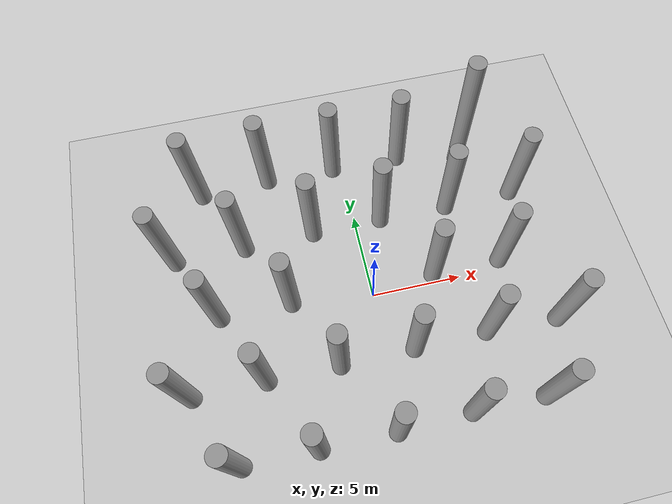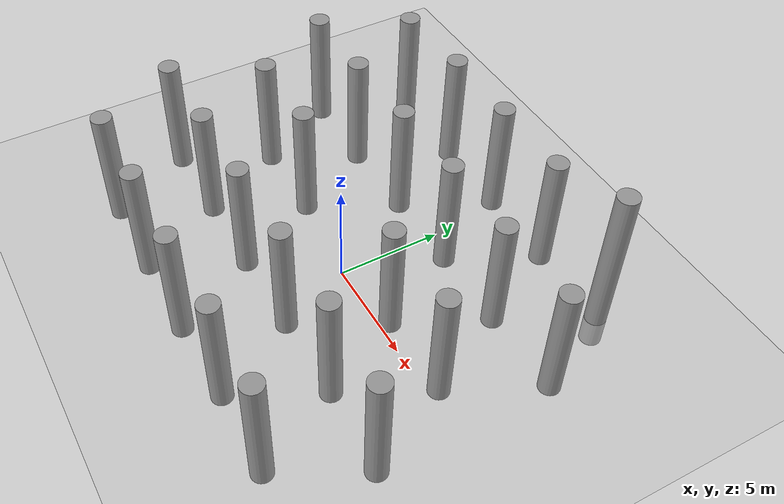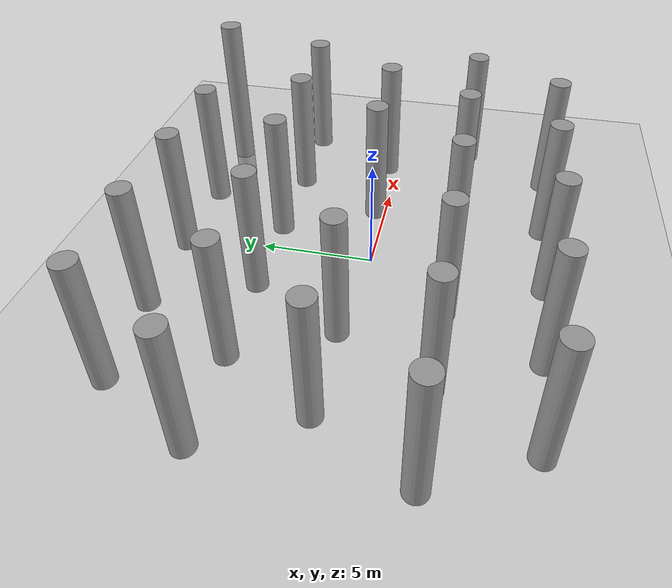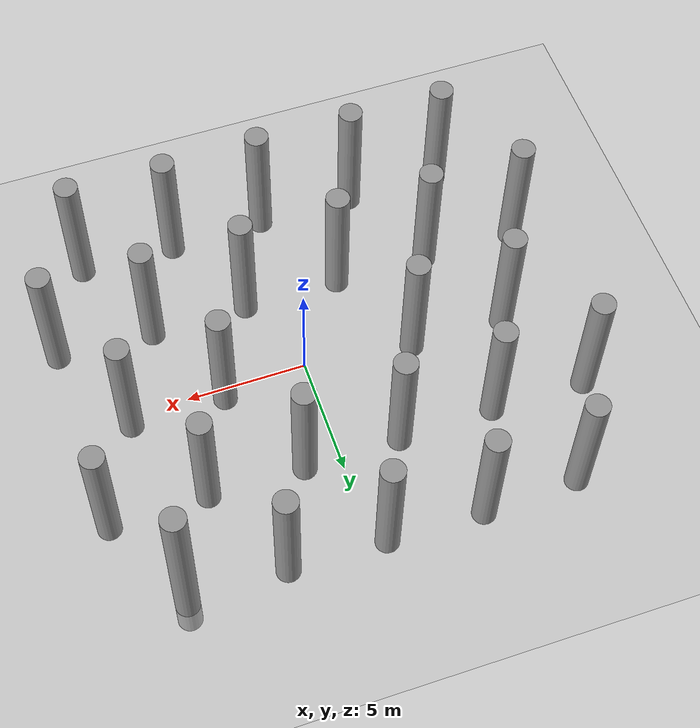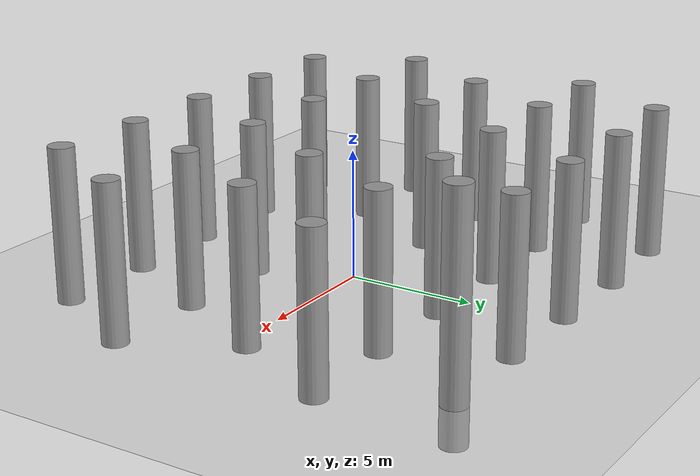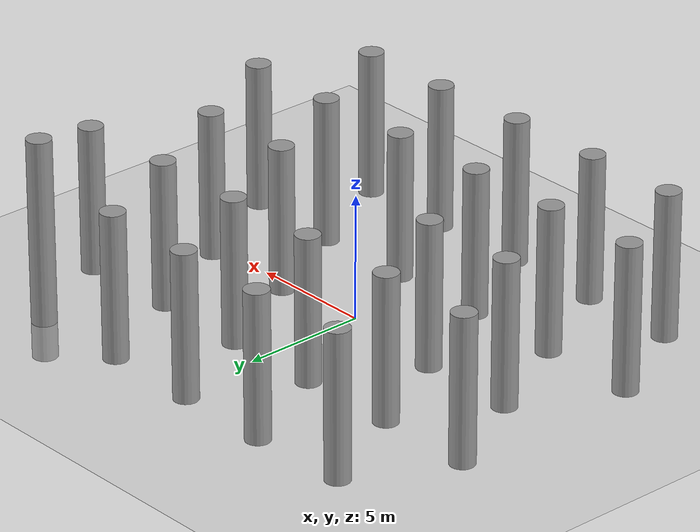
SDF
<sdf version="1.7">
 <world name="default">
  <light name="sun" type="directional">
   <pose>0 0 10 0 -0 0</pose>
   <diffuse>0.8 0.8 0.8 1</diffuse>
   <specular>0.2 0.2 0.2 1</specular>
   <attenuation>
    <range>1000</range>
    <constant>0.9</constant>
    <linear>0.01</linear>
    <quadratic>0.001</quadratic>
   </attenuation>
   <direction>-0.5 0.1 -0.9</direction>
   <spot><inner_angle>0</inner_angle><outer_angle>0</outer_angle><falloff>0</falloff></spot>
  </light>
  <model name="ground_plane">
   <static>1</static>
   <link name="link">
    <collision name="collision">
     <geometry><plane><normal>0 0 1</normal><size>100 100</size></plane></geometry>
     <surface><friction><ode><mu>100</mu><mu2>50</mu2></ode></friction></surface>
    </collision>
    <visual name="visual">
     <cast_shadows>0</cast_shadows>
     <geometry><plane><normal>0 0 1</normal><size>100 100</size></plane></geometry>
     <material>
      <script><uri>file://media/materials/scripts/gazebo.material</uri><name>Gazebo/Grey</name></script>
     </material>
    </visual>
   </link>
  </model>
  <gravity>0 0 -9.8</gravity>
  <magnetic_field>6e-06 2.3e-05 -4.2e-05</magnetic_field>
  <atmosphere type="adiabatic"/>
  <physics type="ode">
   <max_step_size>0.001</max_step_size>
   <real_time_factor>1</real_time_factor>
   <real_time_update_rate>1000</real_time_update_rate>
  </physics>
  <scene><ambient>0.4 0.4 0.4 1</ambient><background>0.7 0.7 0.7 1</background><shadows>1</shadows></scene>
  <spherical_coordinates>
   <surface_model>EARTH_WGS84</surface_model>
   <latitude_deg>0</latitude_deg>
   <longitude_deg>0</longitude_deg>
   <elevation>0</elevation>
   <heading_deg>0</heading_deg>
  </spherical_coordinates>
  <model name="unit_cylinder_clone_15">
   <link name="link">
    <inertial>
     <mass>8.46118</mass>
     <inertia><ixx>55.4464</ixx><ixy>0</ixy><ixz>0</ixz><iyy>55.4464</iyy><iyz>0</iyz><izz>1.0138</izz></inertia>
    </inertial>
    <visual name="visual">
     <geometry><cylinder><radius>0.489525</radius><length>8.8271</length></cylinder></geometry>
     <material>
      <script><name>Gazebo/Grey</name><uri>file://media/materials/scripts/gazebo.material</uri></script>
      <shader type="pixel"/>
     </material>
    </visual>
    <collision name="collision">
     <geometry><cylinder><radius>0.489525</radius><length>8.8271</length></cylinder></geometry>
     <surface>
      <friction>
       <ode><mu>1</mu><mu2>1</mu2><fdir1>0 0 0</fdir1><slip1>0</slip1><slip2>0</slip2></ode>
       <torsional>
        <coefficient>1</coefficient>
        <patch_radius>0</patch_radius>
        <surface_radius>0</surface_radius>
        <use_patch_radius>1</use_patch_radius>
        <ode><slip>0</slip></ode>
       </torsional>
      </friction>
      <bounce><restitution_coefficient>0</restitution_coefficient><threshold>1e+06</threshold></bounce>
      <contact>
       <collide_without_contact>0</collide_without_contact>
       <collide_without_contact_bitmask>1</collide_without_contact_bitmask>
       <collide_bitmask>1</collide_bitmask>
       <ode>
        <soft_cfm>0</soft_cfm>
        <soft_erp>0.2</soft_erp>
        <kp>1e+13</kp>
        <kd>1</kd>
        <max_vel>0.01</max_vel>
        <min_depth>0</min_depth>
       </ode>
       <bullet>
        <split_impulse>1</split_impulse>
        <split_impulse_penetration_threshold>-0.01</split_impulse_penetration_threshold>
        <soft_cfm>0</soft_cfm>
        <soft_erp>0.2</soft_erp>
        <kp>1e+13</kp>
        <kd>1</kd>
       </bullet>
      </contact>
     </surface>
    </collision>
   </link>
   <static>0</static>
   <pose>7.49116 8.57278 2.9612 0 -0 -8e-06</pose>
  </model>
  <model name="unit_cylinder_clone_15_clone">
   <link name="link">
    <inertial>
     <mass>8.46118</mass>
     <inertia><ixx>55.4464</ixx><ixy>0</ixy><ixz>0</ixz><iyy>55.4464</iyy><iyz>0</iyz><izz>1.0138</izz></inertia>
    </inertial>
    <visual name="visual">
     <geometry><cylinder><radius>0.489525</radius><length>5.92241</length></cylinder></geometry>
     <material>
      <script><name>Gazebo/Grey</name><uri>file://media/materials/scripts/gazebo.material</uri></script>
      <shader type="pixel"/>
     </material>
    </visual>
    <collision name="collision">
     <geometry><cylinder><radius>0.489525</radius><length>5.92241</length></cylinder></geometry>
     <surface>
      <friction>
       <ode><mu>1</mu><mu2>1</mu2><fdir1>0 0 0</fdir1><slip1>0</slip1><slip2>0</slip2></ode>
       <torsional>
        <coefficient>1</coefficient>
        <patch_radius>0</patch_radius>
        <surface_radius>0</surface_radius>
        <use_patch_radius>1</use_patch_radius>
        <ode><slip>0</slip></ode>
       </torsional>
      </friction>
      <bounce><restitution_coefficient>0</restitution_coefficient><threshold>1e+06</threshold></bounce>
      <contact>
       <collide_without_contact>0</collide_without_contact>
       <collide_without_contact_bitmask>1</collide_without_contact_bitmask>
       <collide_bitmask>1</collide_bitmask>
       <ode>
        <soft_cfm>0</soft_cfm>
        <soft_erp>0.2</soft_erp>
        <kp>1e+13</kp>
        <kd>1</kd>
        <max_vel>0.01</max_vel>
        <min_depth>0</min_depth>
       </ode>
       <bullet>
        <split_impulse>1</split_impulse>
        <split_impulse_penetration_threshold>-0.01</split_impulse_penetration_threshold>
        <soft_cfm>0</soft_cfm>
        <soft_erp>0.2</soft_erp>
        <kp>1e+13</kp>
        <kd>1</kd>
       </bullet>
      </contact>
     </surface>
    </collision>
   </link>
   <static>0</static>
   <pose>3.47074 8.48349 2.9612 0 0 -8e-06</pose>
  </model>
  <model name="unit_cylinder_clone_15_clone_0">
   <link name="link">
    <inertial>
     <mass>8.46118</mass>
     <inertia><ixx>55.4464</ixx><ixy>0</ixy><ixz>0</ixz><iyy>55.4464</iyy><iyz>0</iyz><izz>1.0138</izz></inertia>
    </inertial>
    <visual name="visual">
     <geometry><cylinder><radius>0.489525</radius><length>5.92241</length></cylinder></geometry>
     <material>
      <script><name>Gazebo/Grey</name><uri>file://media/materials/scripts/gazebo.material</uri></script>
      <shader type="pixel"/>
     </material>
    </visual>
    <collision name="collision">
     <geometry><cylinder><radius>0.489525</radius><length>5.92241</length></cylinder></geometry>
     <surface>
      <friction>
       <ode><mu>1</mu><mu2>1</mu2><fdir1>0 0 0</fdir1><slip1>0</slip1><slip2>0</slip2></ode>
       <torsional>
        <coefficient>1</coefficient>
        <patch_radius>0</patch_radius>
        <surface_radius>0</surface_radius>
        <use_patch_radius>1</use_patch_radius>
        <ode><slip>0</slip></ode>
       </torsional>
      </friction>
      <bounce><restitution_coefficient>0</restitution_coefficient><threshold>1e+06</threshold></bounce>
      <contact>
       <collide_without_contact>0</collide_without_contact>
       <collide_without_contact_bitmask>1</collide_without_contact_bitmask>
       <collide_bitmask>1</collide_bitmask>
       <ode>
        <soft_cfm>0</soft_cfm>
        <soft_erp>0.2</soft_erp>
        <kp>1e+13</kp>
        <kd>1</kd>
        <max_vel>0.01</max_vel>
        <min_depth>0</min_depth>
       </ode>
       <bullet>
        <split_impulse>1</split_impulse>
        <split_impulse_penetration_threshold>-0.01</split_impulse_penetration_threshold>
        <soft_cfm>0</soft_cfm>
        <soft_erp>0.2</soft_erp>
        <kp>1e+13</kp>
        <kd>1</kd>
       </bullet>
      </contact>
     </surface>
    </collision>
   </link>
   <static>0</static>
   <pose>-0.522257 8.53609 2.9612 0 0 -8e-06</pose>
  </model>
  <model name="unit_cylinder_clone_15_clone_1">
   <link name="link">
    <inertial>
     <mass>8.46118</mass>
     <inertia><ixx>55.4464</ixx><ixy>0</ixy><ixz>0</ixz><iyy>55.4464</iyy><iyz>0</iyz><izz>1.0138</izz></inertia>
    </inertial>
    <visual name="visual">
     <geometry><cylinder><radius>0.489525</radius><length>5.92241</length></cylinder></geometry>
     <material>
      <script><name>Gazebo/Grey</name><uri>file://media/materials/scripts/gazebo.material</uri></script>
      <shader type="pixel"/>
     </material>
    </visual>
    <collision name="collision">
     <geometry><cylinder><radius>0.489525</radius><length>5.92241</length></cylinder></geometry>
     <surface>
      <friction>
       <ode><mu>1</mu><mu2>1</mu2><fdir1>0 0 0</fdir1><slip1>0</slip1><slip2>0</slip2></ode>
       <torsional>
        <coefficient>1</coefficient>
        <patch_radius>0</patch_radius>
        <surface_radius>0</surface_radius>
        <use_patch_radius>1</use_patch_radius>
        <ode><slip>0</slip></ode>
       </torsional>
      </friction>
      <bounce><restitution_coefficient>0</restitution_coefficient><threshold>1e+06</threshold></bounce>
      <contact>
       <collide_without_contact>0</collide_without_contact>
       <collide_without_contact_bitmask>1</collide_without_contact_bitmask>
       <collide_bitmask>1</collide_bitmask>
       <ode>
        <soft_cfm>0</soft_cfm>
        <soft_erp>0.2</soft_erp>
        <kp>1e+13</kp>
        <kd>1</kd>
        <max_vel>0.01</max_vel>
        <min_depth>0</min_depth>
       </ode>
       <bullet>
        <split_impulse>1</split_impulse>
        <split_impulse_penetration_threshold>-0.01</split_impulse_penetration_threshold>
        <soft_cfm>0</soft_cfm>
        <soft_erp>0.2</soft_erp>
        <kp>1e+13</kp>
        <kd>1</kd>
       </bullet>
      </contact>
     </surface>
    </collision>
   </link>
   <static>0</static>
   <pose>-4.50106 8.60056 2.9612 0 0 -8e-06</pose>
  </model>
  <model name="unit_cylinder_clone_15_clone_2">
   <link name="link">
    <inertial>
     <mass>8.46118</mass>
     <inertia><ixx>55.4464</ixx><ixy>0</ixy><ixz>0</ixz><iyy>55.4464</iyy><iyz>0</iyz><izz>1.0138</izz></inertia>
    </inertial>
    <visual name="visual">
     <geometry><cylinder><radius>0.489525</radius><length>5.92241</length></cylinder></geometry>
     <material>
      <script><name>Gazebo/Grey</name><uri>file://media/materials/scripts/gazebo.material</uri></script>
      <shader type="pixel"/>
     </material>
    </visual>
    <collision name="collision">
     <geometry><cylinder><radius>0.489525</radius><length>5.92241</length></cylinder></geometry>
     <surface>
      <friction>
       <ode><mu>1</mu><mu2>1</mu2><fdir1>0 0 0</fdir1><slip1>0</slip1><slip2>0</slip2></ode>
       <torsional>
        <coefficient>1</coefficient>
        <patch_radius>0</patch_radius>
        <surface_radius>0</surface_radius>
        <use_patch_radius>1</use_patch_radius>
        <ode><slip>0</slip></ode>
       </torsional>
      </friction>
      <bounce><restitution_coefficient>0</restitution_coefficient><threshold>1e+06</threshold></bounce>
      <contact>
       <collide_without_contact>0</collide_without_contact>
       <collide_without_contact_bitmask>1</collide_without_contact_bitmask>
       <collide_bitmask>1</collide_bitmask>
       <ode>
        <soft_cfm>0</soft_cfm>
        <soft_erp>0.2</soft_erp>
        <kp>1e+13</kp>
        <kd>1</kd>
        <max_vel>0.01</max_vel>
        <min_depth>0</min_depth>
       </ode>
       <bullet>
        <split_impulse>1</split_impulse>
        <split_impulse_penetration_threshold>-0.01</split_impulse_penetration_threshold>
        <soft_cfm>0</soft_cfm>
        <soft_erp>0.2</soft_erp>
        <kp>1e+13</kp>
        <kd>1</kd>
       </bullet>
      </contact>
     </surface>
    </collision>
   </link>
   <static>0</static>
   <pose>-8.49669 8.41734 2.9612 0 0 -8e-06</pose>
  </model>
  <model name="unit_cylinder_clone_15_clone_3">
   <link name="link">
    <inertial>
     <mass>8.46118</mass>
     <inertia><ixx>55.4464</ixx><ixy>0</ixy><ixz>0</ixz><iyy>55.4464</iyy><iyz>0</iyz><izz>1.0138</izz></inertia>
    </inertial>
    <visual name="visual">
     <geometry><cylinder><radius>0.489525</radius><length>5.92241</length></cylinder></geometry>
     <material>
      <script><name>Gazebo/Grey</name><uri>file://media/materials/scripts/gazebo.material</uri></script>
      <shader type="pixel"/>
     </material>
    </visual>
    <collision name="collision">
     <geometry><cylinder><radius>0.489525</radius><length>5.92241</length></cylinder></geometry>
     <surface>
      <friction>
       <ode><mu>1</mu><mu2>1</mu2><fdir1>0 0 0</fdir1><slip1>0</slip1><slip2>0</slip2></ode>
       <torsional>
        <coefficient>1</coefficient>
        <patch_radius>0</patch_radius>
        <surface_radius>0</surface_radius>
        <use_patch_radius>1</use_patch_radius>
        <ode><slip>0</slip></ode>
       </torsional>
      </friction>
      <bounce><restitution_coefficient>0</restitution_coefficient><threshold>1e+06</threshold></bounce>
      <contact>
       <collide_without_contact>0</collide_without_contact>
       <collide_without_contact_bitmask>1</collide_without_contact_bitmask>
       <collide_bitmask>1</collide_bitmask>
       <ode>
        <soft_cfm>0</soft_cfm>
        <soft_erp>0.2</soft_erp>
        <kp>1e+13</kp>
        <kd>1</kd>
        <max_vel>0.01</max_vel>
        <min_depth>0</min_depth>
       </ode>
       <bullet>
        <split_impulse>1</split_impulse>
        <split_impulse_penetration_threshold>-0.01</split_impulse_penetration_threshold>
        <soft_cfm>0</soft_cfm>
        <soft_erp>0.2</soft_erp>
        <kp>1e+13</kp>
        <kd>1</kd>
       </bullet>
      </contact>
     </surface>
    </collision>
   </link>
   <static>0</static>
   <pose>-6.52454 4.40533 2.9612 0 0 -8e-06</pose>
  </model>
  <model name="unit_cylinder_clone_15_clone_4">
   <link name="link">
    <inertial>
     <mass>8.46118</mass>
     <inertia><ixx>55.4464</ixx><ixy>0</ixy><ixz>0</ixz><iyy>55.4464</iyy><iyz>0</iyz><izz>1.0138</izz></inertia>
    </inertial>
    <visual name="visual">
     <geometry><cylinder><radius>0.489525</radius><length>5.92241</length></cylinder></geometry>
     <material>
      <script><name>Gazebo/Grey</name><uri>file://media/materials/scripts/gazebo.material</uri></script>
      <shader type="pixel"/>
     </material>
    </visual>
    <collision name="collision">
     <geometry><cylinder><radius>0.489525</radius><length>5.92241</length></cylinder></geometry>
     <surface>
      <friction>
       <ode><mu>1</mu><mu2>1</mu2><fdir1>0 0 0</fdir1><slip1>0</slip1><slip2>0</slip2></ode>
       <torsional>
        <coefficient>1</coefficient>
        <patch_radius>0</patch_radius>
        <surface_radius>0</surface_radius>
        <use_patch_radius>1</use_patch_radius>
        <ode><slip>0</slip></ode>
       </torsional>
      </friction>
      <bounce><restitution_coefficient>0</restitution_coefficient><threshold>1e+06</threshold></bounce>
      <contact>
       <collide_without_contact>0</collide_without_contact>
       <collide_without_contact_bitmask>1</collide_without_contact_bitmask>
       <collide_bitmask>1</collide_bitmask>
       <ode>
        <soft_cfm>0</soft_cfm>
        <soft_erp>0.2</soft_erp>
        <kp>1e+13</kp>
        <kd>1</kd>
        <max_vel>0.01</max_vel>
        <min_depth>0</min_depth>
       </ode>
       <bullet>
        <split_impulse>1</split_impulse>
        <split_impulse_penetration_threshold>-0.01</split_impulse_penetration_threshold>
        <soft_cfm>0</soft_cfm>
        <soft_erp>0.2</soft_erp>
        <kp>1e+13</kp>
        <kd>1</kd>
       </bullet>
      </contact>
     </surface>
    </collision>
   </link>
   <static>0</static>
   <pose>-2.50167 4.50172 2.9612 0 0 -8e-06</pose>
  </model>
  <model name="unit_cylinder_clone_15_clone_5">
   <link name="link">
    <inertial>
     <mass>8.46118</mass>
     <inertia><ixx>55.4464</ixx><ixy>0</ixy><ixz>0</ixz><iyy>55.4464</iyy><iyz>0</iyz><izz>1.0138</izz></inertia>
    </inertial>
    <visual name="visual">
     <geometry><cylinder><radius>0.489525</radius><length>5.92241</length></cylinder></geometry>
     <material>
      <script><name>Gazebo/Grey</name><uri>file://media/materials/scripts/gazebo.material</uri></script>
      <shader type="pixel"/>
     </material>
    </visual>
    <collision name="collision">
     <geometry><cylinder><radius>0.489525</radius><length>5.92241</length></cylinder></geometry>
     <surface>
      <friction>
       <ode><mu>1</mu><mu2>1</mu2><fdir1>0 0 0</fdir1><slip1>0</slip1><slip2>0</slip2></ode>
       <torsional>
        <coefficient>1</coefficient>
        <patch_radius>0</patch_radius>
        <surface_radius>0</surface_radius>
        <use_patch_radius>1</use_patch_radius>
        <ode><slip>0</slip></ode>
       </torsional>
      </friction>
      <bounce><restitution_coefficient>0</restitution_coefficient><threshold>1e+06</threshold></bounce>
      <contact>
       <collide_without_contact>0</collide_without_contact>
       <collide_without_contact_bitmask>1</collide_without_contact_bitmask>
       <collide_bitmask>1</collide_bitmask>
       <ode>
        <soft_cfm>0</soft_cfm>
        <soft_erp>0.2</soft_erp>
        <kp>1e+13</kp>
        <kd>1</kd>
        <max_vel>0.01</max_vel>
        <min_depth>0</min_depth>
       </ode>
       <bullet>
        <split_impulse>1</split_impulse>
        <split_impulse_penetration_threshold>-0.01</split_impulse_penetration_threshold>
        <soft_cfm>0</soft_cfm>
        <soft_erp>0.2</soft_erp>
        <kp>1e+13</kp>
        <kd>1</kd>
       </bullet>
      </contact>
     </surface>
    </collision>
   </link>
   <static>0</static>
   <pose>1.49307 4.52681 2.9612 0 0 -8e-06</pose>
  </model>
  <model name="unit_cylinder_clone_15_clone_6">
   <link name="link">
    <inertial>
     <mass>8.46118</mass>
     <inertia><ixx>55.4464</ixx><ixy>0</ixy><ixz>0</ixz><iyy>55.4464</iyy><iyz>0</iyz><izz>1.0138</izz></inertia>
    </inertial>
    <visual name="visual">
     <geometry><cylinder><radius>0.489525</radius><length>5.92241</length></cylinder></geometry>
     <material>
      <script><name>Gazebo/Grey</name><uri>file://media/materials/scripts/gazebo.material</uri></script>
      <shader type="pixel"/>
     </material>
    </visual>
    <collision name="collision">
     <geometry><cylinder><radius>0.489525</radius><length>5.92241</length></cylinder></geometry>
     <surface>
      <friction>
       <ode><mu>1</mu><mu2>1</mu2><fdir1>0 0 0</fdir1><slip1>0</slip1><slip2>0</slip2></ode>
       <torsional>
        <coefficient>1</coefficient>
        <patch_radius>0</patch_radius>
        <surface_radius>0</surface_radius>
        <use_patch_radius>1</use_patch_radius>
        <ode><slip>0</slip></ode>
       </torsional>
      </friction>
      <bounce><restitution_coefficient>0</restitution_coefficient><threshold>1e+06</threshold></bounce>
      <contact>
       <collide_without_contact>0</collide_without_contact>
       <collide_without_contact_bitmask>1</collide_without_contact_bitmask>
       <collide_bitmask>1</collide_bitmask>
       <ode>
        <soft_cfm>0</soft_cfm>
        <soft_erp>0.2</soft_erp>
        <kp>1e+13</kp>
        <kd>1</kd>
        <max_vel>0.01</max_vel>
        <min_depth>0</min_depth>
       </ode>
       <bullet>
        <split_impulse>1</split_impulse>
        <split_impulse_penetration_threshold>-0.01</split_impulse_penetration_threshold>
        <soft_cfm>0</soft_cfm>
        <soft_erp>0.2</soft_erp>
        <kp>1e+13</kp>
        <kd>1</kd>
       </bullet>
      </contact>
     </surface>
    </collision>
   </link>
   <static>0</static>
   <pose>5.46462 4.49288 2.9612 0 0 -8e-06</pose>
  </model>
  <model name="unit_cylinder_clone_15_clone_7">
   <link name="link">
    <inertial>
     <mass>8.46118</mass>
     <inertia><ixx>55.4464</ixx><ixy>0</ixy><ixz>0</ixz><iyy>55.4464</iyy><iyz>0</iyz><izz>1.0138</izz></inertia>
    </inertial>
    <visual name="visual">
     <geometry><cylinder><radius>0.489525</radius><length>5.92241</length></cylinder></geometry>
     <material>
      <script><name>Gazebo/Grey</name><uri>file://media/materials/scripts/gazebo.material</uri></script>
      <shader type="pixel"/>
     </material>
    </visual>
    <collision name="collision">
     <geometry><cylinder><radius>0.489525</radius><length>5.92241</length></cylinder></geometry>
     <surface>
      <friction>
       <ode><mu>1</mu><mu2>1</mu2><fdir1>0 0 0</fdir1><slip1>0</slip1><slip2>0</slip2></ode>
       <torsional>
        <coefficient>1</coefficient>
        <patch_radius>0</patch_radius>
        <surface_radius>0</surface_radius>
        <use_patch_radius>1</use_patch_radius>
        <ode><slip>0</slip></ode>
       </torsional>
      </friction>
      <bounce><restitution_coefficient>0</restitution_coefficient><threshold>1e+06</threshold></bounce>
      <contact>
       <collide_without_contact>0</collide_without_contact>
       <collide_without_contact_bitmask>1</collide_without_contact_bitmask>
       <collide_bitmask>1</collide_bitmask>
       <ode>
        <soft_cfm>0</soft_cfm>
        <soft_erp>0.2</soft_erp>
        <kp>1e+13</kp>
        <kd>1</kd>
        <max_vel>0.01</max_vel>
        <min_depth>0</min_depth>
       </ode>
       <bullet>
        <split_impulse>1</split_impulse>
        <split_impulse_penetration_threshold>-0.01</split_impulse_penetration_threshold>
        <soft_cfm>0</soft_cfm>
        <soft_erp>0.2</soft_erp>
        <kp>1e+13</kp>
        <kd>1</kd>
       </bullet>
      </contact>
     </surface>
    </collision>
   </link>
   <static>0</static>
   <pose>-10.5086 4.42625 2.9612 0 0 -8e-06</pose>
  </model>
  <model name="unit_cylinder_clone_15_clone_8">
   <link name="link">
    <inertial>
     <mass>8.46118</mass>
     <inertia><ixx>55.4464</ixx><ixy>0</ixy><ixz>0</ixz><iyy>55.4464</iyy><iyz>0</iyz><izz>1.0138</izz></inertia>
    </inertial>
    <visual name="visual">
     <geometry><cylinder><radius>0.489525</radius><length>5.92241</length></cylinder></geometry>
     <material>
      <script><name>Gazebo/Grey</name><uri>file://media/materials/scripts/gazebo.material</uri></script>
      <shader type="pixel"/>
     </material>
    </visual>
    <collision name="collision">
     <geometry><cylinder><radius>0.489525</radius><length>5.92241</length></cylinder></geometry>
     <surface>
      <friction>
       <ode><mu>1</mu><mu2>1</mu2><fdir1>0 0 0</fdir1><slip1>0</slip1><slip2>0</slip2></ode>
       <torsional>
        <coefficient>1</coefficient>
        <patch_radius>0</patch_radius>
        <surface_radius>0</surface_radius>
        <use_patch_radius>1</use_patch_radius>
        <ode><slip>0</slip></ode>
       </torsional>
      </friction>
      <bounce><restitution_coefficient>0</restitution_coefficient><threshold>1e+06</threshold></bounce>
      <contact>
       <collide_without_contact>0</collide_without_contact>
       <collide_without_contact_bitmask>1</collide_without_contact_bitmask>
       <collide_bitmask>1</collide_bitmask>
       <ode>
        <soft_cfm>0</soft_cfm>
        <soft_erp>0.2</soft_erp>
        <kp>1e+13</kp>
        <kd>1</kd>
        <max_vel>0.01</max_vel>
        <min_depth>0</min_depth>
       </ode>
       <bullet>
        <split_impulse>1</split_impulse>
        <split_impulse_penetration_threshold>-0.01</split_impulse_penetration_threshold>
        <soft_cfm>0</soft_cfm>
        <soft_erp>0.2</soft_erp>
        <kp>1e+13</kp>
        <kd>1</kd>
       </bullet>
      </contact>
     </surface>
    </collision>
   </link>
   <static>0</static>
   <pose>9.48648 4.60149 2.9612 0 0 -8e-06</pose>
  </model>
  <model name="unit_cylinder_clone_15_clone_9">
   <link name="link">
    <inertial>
     <mass>8.46118</mass>
     <inertia><ixx>55.4464</ixx><ixy>0</ixy><ixz>0</ixz><iyy>55.4464</iyy><iyz>0</iyz><izz>1.0138</izz></inertia>
    </inertial>
    <visual name="visual">
     <geometry><cylinder><radius>0.489525</radius><length>5.92241</length></cylinder></geometry>
     <material>
      <script><name>Gazebo/Grey</name><uri>file://media/materials/scripts/gazebo.material</uri></script>
      <shader type="pixel"/>
     </material>
    </visual>
    <collision name="collision">
     <geometry><cylinder><radius>0.489525</radius><length>5.92241</length></cylinder></geometry>
     <surface>
      <friction>
       <ode><mu>1</mu><mu2>1</mu2><fdir1>0 0 0</fdir1><slip1>0</slip1><slip2>0</slip2></ode>
       <torsional>
        <coefficient>1</coefficient>
        <patch_radius>0</patch_radius>
        <surface_radius>0</surface_radius>
        <use_patch_radius>1</use_patch_radius>
        <ode><slip>0</slip></ode>
       </torsional>
      </friction>
      <bounce><restitution_coefficient>0</restitution_coefficient><threshold>1e+06</threshold></bounce>
      <contact>
       <collide_without_contact>0</collide_without_contact>
       <collide_without_contact_bitmask>1</collide_without_contact_bitmask>
       <collide_bitmask>1</collide_bitmask>
       <ode>
        <soft_cfm>0</soft_cfm>
        <soft_erp>0.2</soft_erp>
        <kp>1e+13</kp>
        <kd>1</kd>
        <max_vel>0.01</max_vel>
        <min_depth>0</min_depth>
       </ode>
       <bullet>
        <split_impulse>1</split_impulse>
        <split_impulse_penetration_threshold>-0.01</split_impulse_penetration_threshold>
        <soft_cfm>0</soft_cfm>
        <soft_erp>0.2</soft_erp>
        <kp>1e+13</kp>
        <kd>1</kd>
       </bullet>
      </contact>
     </surface>
    </collision>
   </link>
   <static>0</static>
   <pose>7.49309 0.491689 2.9612 0 0 -8e-06</pose>
  </model>
  <model name="unit_cylinder_clone_15_clone_10">
   <link name="link">
    <inertial>
     <mass>8.46118</mass>
     <inertia><ixx>55.4464</ixx><ixy>0</ixy><ixz>0</ixz><iyy>55.4464</iyy><iyz>0</iyz><izz>1.0138</izz></inertia>
    </inertial>
    <visual name="visual">
     <geometry><cylinder><radius>0.489525</radius><length>5.92241</length></cylinder></geometry>
     <material>
      <script><name>Gazebo/Grey</name><uri>file://media/materials/scripts/gazebo.material</uri></script>
      <shader type="pixel"/>
     </material>
    </visual>
    <collision name="collision">
     <geometry><cylinder><radius>0.489525</radius><length>5.92241</length></cylinder></geometry>
     <surface>
      <friction>
       <ode><mu>1</mu><mu2>1</mu2><fdir1>0 0 0</fdir1><slip1>0</slip1><slip2>0</slip2></ode>
       <torsional>
        <coefficient>1</coefficient>
        <patch_radius>0</patch_radius>
        <surface_radius>0</surface_radius>
        <use_patch_radius>1</use_patch_radius>
        <ode><slip>0</slip></ode>
       </torsional>
      </friction>
      <bounce><restitution_coefficient>0</restitution_coefficient><threshold>1e+06</threshold></bounce>
      <contact>
       <collide_without_contact>0</collide_without_contact>
       <collide_without_contact_bitmask>1</collide_without_contact_bitmask>
       <collide_bitmask>1</collide_bitmask>
       <ode>
        <soft_cfm>0</soft_cfm>
        <soft_erp>0.2</soft_erp>
        <kp>1e+13</kp>
        <kd>1</kd>
        <max_vel>0.01</max_vel>
        <min_depth>0</min_depth>
       </ode>
       <bullet>
        <split_impulse>1</split_impulse>
        <split_impulse_penetration_threshold>-0.01</split_impulse_penetration_threshold>
        <soft_cfm>0</soft_cfm>
        <soft_erp>0.2</soft_erp>
        <kp>1e+13</kp>
        <kd>1</kd>
       </bullet>
      </contact>
     </surface>
    </collision>
   </link>
   <static>0</static>
   <pose>3.55592 0.467046 2.9612 0 0 -8e-06</pose>
  </model>
  <model name="unit_cylinder_clone_15_clone_12">
   <link name="link">
    <inertial>
     <mass>8.46118</mass>
     <inertia><ixx>55.4464</ixx><ixy>0</ixy><ixz>0</ixz><iyy>55.4464</iyy><iyz>0</iyz><izz>1.0138</izz></inertia>
    </inertial>
    <visual name="visual">
     <geometry><cylinder><radius>0.489525</radius><length>5.92241</length></cylinder></geometry>
     <material>
      <script><name>Gazebo/Grey</name><uri>file://media/materials/scripts/gazebo.material</uri></script>
      <shader type="pixel"/>
     </material>
    </visual>
    <collision name="collision">
     <geometry><cylinder><radius>0.489525</radius><length>5.92241</length></cylinder></geometry>
     <surface>
      <friction>
       <ode><mu>1</mu><mu2>1</mu2><fdir1>0 0 0</fdir1><slip1>0</slip1><slip2>0</slip2></ode>
       <torsional>
        <coefficient>1</coefficient>
        <patch_radius>0</patch_radius>
        <surface_radius>0</surface_radius>
        <use_patch_radius>1</use_patch_radius>
        <ode><slip>0</slip></ode>
       </torsional>
      </friction>
      <bounce><restitution_coefficient>0</restitution_coefficient><threshold>1e+06</threshold></bounce>
      <contact>
       <collide_without_contact>0</collide_without_contact>
       <collide_without_contact_bitmask>1</collide_without_contact_bitmask>
       <collide_bitmask>1</collide_bitmask>
       <ode>
        <soft_cfm>0</soft_cfm>
        <soft_erp>0.2</soft_erp>
        <kp>1e+13</kp>
        <kd>1</kd>
        <max_vel>0.01</max_vel>
        <min_depth>0</min_depth>
       </ode>
       <bullet>
        <split_impulse>1</split_impulse>
        <split_impulse_penetration_threshold>-0.01</split_impulse_penetration_threshold>
        <soft_cfm>0</soft_cfm>
        <soft_erp>0.2</soft_erp>
        <kp>1e+13</kp>
        <kd>1</kd>
       </bullet>
      </contact>
     </surface>
    </collision>
   </link>
   <static>0</static>
   <pose>-4.5025 0.51168 2.9612 0 0 -8e-06</pose>
  </model>
  <model name="unit_cylinder_clone_15_clone_13">
   <link name="link">
    <inertial>
     <mass>8.46118</mass>
     <inertia><ixx>55.4464</ixx><ixy>0</ixy><ixz>0</ixz><iyy>55.4464</iyy><iyz>0</iyz><izz>1.0138</izz></inertia>
    </inertial>
    <visual name="visual">
     <geometry><cylinder><radius>0.489525</radius><length>5.92241</length></cylinder></geometry>
     <material>
      <script><name>Gazebo/Grey</name><uri>file://media/materials/scripts/gazebo.material</uri></script>
      <shader type="pixel"/>
     </material>
    </visual>
    <collision name="collision">
     <geometry><cylinder><radius>0.489525</radius><length>5.92241</length></cylinder></geometry>
     <surface>
      <friction>
       <ode><mu>1</mu><mu2>1</mu2><fdir1>0 0 0</fdir1><slip1>0</slip1><slip2>0</slip2></ode>
       <torsional>
        <coefficient>1</coefficient>
        <patch_radius>0</patch_radius>
        <surface_radius>0</surface_radius>
        <use_patch_radius>1</use_patch_radius>
        <ode><slip>0</slip></ode>
       </torsional>
      </friction>
      <bounce><restitution_coefficient>0</restitution_coefficient><threshold>1e+06</threshold></bounce>
      <contact>
       <collide_without_contact>0</collide_without_contact>
       <collide_without_contact_bitmask>1</collide_without_contact_bitmask>
       <collide_bitmask>1</collide_bitmask>
       <ode>
        <soft_cfm>0</soft_cfm>
        <soft_erp>0.2</soft_erp>
        <kp>1e+13</kp>
        <kd>1</kd>
        <max_vel>0.01</max_vel>
        <min_depth>0</min_depth>
       </ode>
       <bullet>
        <split_impulse>1</split_impulse>
        <split_impulse_penetration_threshold>-0.01</split_impulse_penetration_threshold>
        <soft_cfm>0</soft_cfm>
        <soft_erp>0.2</soft_erp>
        <kp>1e+13</kp>
        <kd>1</kd>
       </bullet>
      </contact>
     </surface>
    </collision>
   </link>
   <static>0</static>
   <pose>-8.4904 0.533656 2.9612 0 0 -8e-06</pose>
  </model>
  <model name="unit_cylinder_clone_15_clone_14">
   <link name="link">
    <inertial>
     <mass>8.46118</mass>
     <inertia><ixx>55.4464</ixx><ixy>0</ixy><ixz>0</ixz><iyy>55.4464</iyy><iyz>0</iyz><izz>1.0138</izz></inertia>
    </inertial>
    <visual name="visual">
     <geometry><cylinder><radius>0.489525</radius><length>5.92241</length></cylinder></geometry>
     <material>
      <script><name>Gazebo/Grey</name><uri>file://media/materials/scripts/gazebo.material</uri></script>
      <shader type="pixel"/>
     </material>
    </visual>
    <collision name="collision">
     <geometry><cylinder><radius>0.489525</radius><length>5.92241</length></cylinder></geometry>
     <surface>
      <friction>
       <ode><mu>1</mu><mu2>1</mu2><fdir1>0 0 0</fdir1><slip1>0</slip1><slip2>0</slip2></ode>
       <torsional>
        <coefficient>1</coefficient>
        <patch_radius>0</patch_radius>
        <surface_radius>0</surface_radius>
        <use_patch_radius>1</use_patch_radius>
        <ode><slip>0</slip></ode>
       </torsional>
      </friction>
      <bounce><restitution_coefficient>0</restitution_coefficient><threshold>1e+06</threshold></bounce>
      <contact>
       <collide_without_contact>0</collide_without_contact>
       <collide_without_contact_bitmask>1</collide_without_contact_bitmask>
       <collide_bitmask>1</collide_bitmask>
       <ode>
        <soft_cfm>0</soft_cfm>
        <soft_erp>0.2</soft_erp>
        <kp>1e+13</kp>
        <kd>1</kd>
        <max_vel>0.01</max_vel>
        <min_depth>0</min_depth>
       </ode>
       <bullet>
        <split_impulse>1</split_impulse>
        <split_impulse_penetration_threshold>-0.01</split_impulse_penetration_threshold>
        <soft_cfm>0</soft_cfm>
        <soft_erp>0.2</soft_erp>
        <kp>1e+13</kp>
        <kd>1</kd>
       </bullet>
      </contact>
     </surface>
    </collision>
   </link>
   <static>0</static>
   <pose>-10.5082 -3.48615 2.9612 0 0 -8e-06</pose>
  </model>
  <model name="unit_cylinder_clone_15_clone_15">
   <link name="link">
    <inertial>
     <mass>8.46118</mass>
     <inertia><ixx>55.4464</ixx><ixy>0</ixy><ixz>0</ixz><iyy>55.4464</iyy><iyz>0</iyz><izz>1.0138</izz></inertia>
    </inertial>
    <visual name="visual">
     <geometry><cylinder><radius>0.489525</radius><length>5.92241</length></cylinder></geometry>
     <material>
      <script><name>Gazebo/Grey</name><uri>file://media/materials/scripts/gazebo.material</uri></script>
      <shader type="pixel"/>
     </material>
    </visual>
    <collision name="collision">
     <geometry><cylinder><radius>0.489525</radius><length>5.92241</length></cylinder></geometry>
     <surface>
      <friction>
       <ode><mu>1</mu><mu2>1</mu2><fdir1>0 0 0</fdir1><slip1>0</slip1><slip2>0</slip2></ode>
       <torsional>
        <coefficient>1</coefficient>
        <patch_radius>0</patch_radius>
        <surface_radius>0</surface_radius>
        <use_patch_radius>1</use_patch_radius>
        <ode><slip>0</slip></ode>
       </torsional>
      </friction>
      <bounce><restitution_coefficient>0</restitution_coefficient><threshold>1e+06</threshold></bounce>
      <contact>
       <collide_without_contact>0</collide_without_contact>
       <collide_without_contact_bitmask>1</collide_without_contact_bitmask>
       <collide_bitmask>1</collide_bitmask>
       <ode>
        <soft_cfm>0</soft_cfm>
        <soft_erp>0.2</soft_erp>
        <kp>1e+13</kp>
        <kd>1</kd>
        <max_vel>0.01</max_vel>
        <min_depth>0</min_depth>
       </ode>
       <bullet>
        <split_impulse>1</split_impulse>
        <split_impulse_penetration_threshold>-0.01</split_impulse_penetration_threshold>
        <soft_cfm>0</soft_cfm>
        <soft_erp>0.2</soft_erp>
        <kp>1e+13</kp>
        <kd>1</kd>
       </bullet>
      </contact>
     </surface>
    </collision>
   </link>
   <static>0</static>
   <pose>-6.5387 -3.48435 2.9612 0 0 -8e-06</pose>
  </model>
  <model name="unit_cylinder_clone_15_clone_16">
   <link name="link">
    <inertial>
     <mass>8.46118</mass>
     <inertia><ixx>55.4464</ixx><ixy>0</ixy><ixz>0</ixz><iyy>55.4464</iyy><iyz>0</iyz><izz>1.0138</izz></inertia>
    </inertial>
    <visual name="visual">
     <geometry><cylinder><radius>0.489525</radius><length>5.92241</length></cylinder></geometry>
     <material>
      <script><name>Gazebo/Grey</name><uri>file://media/materials/scripts/gazebo.material</uri></script>
      <shader type="pixel"/>
     </material>
    </visual>
    <collision name="collision">
     <geometry><cylinder><radius>0.489525</radius><length>5.92241</length></cylinder></geometry>
     <surface>
      <friction>
       <ode><mu>1</mu><mu2>1</mu2><fdir1>0 0 0</fdir1><slip1>0</slip1><slip2>0</slip2></ode>
       <torsional>
        <coefficient>1</coefficient>
        <patch_radius>0</patch_radius>
        <surface_radius>0</surface_radius>
        <use_patch_radius>1</use_patch_radius>
        <ode><slip>0</slip></ode>
       </torsional>
      </friction>
      <bounce><restitution_coefficient>0</restitution_coefficient><threshold>1e+06</threshold></bounce>
      <contact>
       <collide_without_contact>0</collide_without_contact>
       <collide_without_contact_bitmask>1</collide_without_contact_bitmask>
       <collide_bitmask>1</collide_bitmask>
       <ode>
        <soft_cfm>0</soft_cfm>
        <soft_erp>0.2</soft_erp>
        <kp>1e+13</kp>
        <kd>1</kd>
        <max_vel>0.01</max_vel>
        <min_depth>0</min_depth>
       </ode>
       <bullet>
        <split_impulse>1</split_impulse>
        <split_impulse_penetration_threshold>-0.01</split_impulse_penetration_threshold>
        <soft_cfm>0</soft_cfm>
        <soft_erp>0.2</soft_erp>
        <kp>1e+13</kp>
        <kd>1</kd>
       </bullet>
      </contact>
     </surface>
    </collision>
   </link>
   <static>0</static>
   <pose>-2.59544 -3.51821 2.9612 0 0 -8e-06</pose>
  </model>
  <model name="unit_cylinder_clone_15_clone_17">
   <link name="link">
    <inertial>
     <mass>8.46118</mass>
     <inertia><ixx>55.4464</ixx><ixy>0</ixy><ixz>0</ixz><iyy>55.4464</iyy><iyz>0</iyz><izz>1.0138</izz></inertia>
    </inertial>
    <visual name="visual">
     <geometry><cylinder><radius>0.489525</radius><length>5.92241</length></cylinder></geometry>
     <material>
      <script><name>Gazebo/Grey</name><uri>file://media/materials/scripts/gazebo.material</uri></script>
      <shader type="pixel"/>
     </material>
    </visual>
    <collision name="collision">
     <geometry><cylinder><radius>0.489525</radius><length>5.92241</length></cylinder></geometry>
     <surface>
      <friction>
       <ode><mu>1</mu><mu2>1</mu2><fdir1>0 0 0</fdir1><slip1>0</slip1><slip2>0</slip2></ode>
       <torsional>
        <coefficient>1</coefficient>
        <patch_radius>0</patch_radius>
        <surface_radius>0</surface_radius>
        <use_patch_radius>1</use_patch_radius>
        <ode><slip>0</slip></ode>
       </torsional>
      </friction>
      <bounce><restitution_coefficient>0</restitution_coefficient><threshold>1e+06</threshold></bounce>
      <contact>
       <collide_without_contact>0</collide_without_contact>
       <collide_without_contact_bitmask>1</collide_without_contact_bitmask>
       <collide_bitmask>1</collide_bitmask>
       <ode>
        <soft_cfm>0</soft_cfm>
        <soft_erp>0.2</soft_erp>
        <kp>1e+13</kp>
        <kd>1</kd>
        <max_vel>0.01</max_vel>
        <min_depth>0</min_depth>
       </ode>
       <bullet>
        <split_impulse>1</split_impulse>
        <split_impulse_penetration_threshold>-0.01</split_impulse_penetration_threshold>
        <soft_cfm>0</soft_cfm>
        <soft_erp>0.2</soft_erp>
        <kp>1e+13</kp>
        <kd>1</kd>
       </bullet>
      </contact>
     </surface>
    </collision>
   </link>
   <static>0</static>
   <pose>1.45965 -3.49801 2.9612 0 0 -8e-06</pose>
  </model>
  <model name="unit_cylinder_clone_15_clone_18">
   <link name="link">
    <inertial>
     <mass>8.46118</mass>
     <inertia><ixx>55.4464</ixx><ixy>0</ixy><ixz>0</ixz><iyy>55.4464</iyy><iyz>0</iyz><izz>1.0138</izz></inertia>
    </inertial>
    <visual name="visual">
     <geometry><cylinder><radius>0.489525</radius><length>5.92241</length></cylinder></geometry>
     <material>
      <script><name>Gazebo/Grey</name><uri>file://media/materials/scripts/gazebo.material</uri></script>
      <shader type="pixel"/>
     </material>
    </visual>
    <collision name="collision">
     <geometry><cylinder><radius>0.489525</radius><length>5.92241</length></cylinder></geometry>
     <surface>
      <friction>
       <ode><mu>1</mu><mu2>1</mu2><fdir1>0 0 0</fdir1><slip1>0</slip1><slip2>0</slip2></ode>
       <torsional>
        <coefficient>1</coefficient>
        <patch_radius>0</patch_radius>
        <surface_radius>0</surface_radius>
        <use_patch_radius>1</use_patch_radius>
        <ode><slip>0</slip></ode>
       </torsional>
      </friction>
      <bounce><restitution_coefficient>0</restitution_coefficient><threshold>1e+06</threshold></bounce>
      <contact>
       <collide_without_contact>0</collide_without_contact>
       <collide_without_contact_bitmask>1</collide_without_contact_bitmask>
       <collide_bitmask>1</collide_bitmask>
       <ode>
        <soft_cfm>0</soft_cfm>
        <soft_erp>0.2</soft_erp>
        <kp>1e+13</kp>
        <kd>1</kd>
        <max_vel>0.01</max_vel>
        <min_depth>0</min_depth>
       </ode>
       <bullet>
        <split_impulse>1</split_impulse>
        <split_impulse_penetration_threshold>-0.01</split_impulse_penetration_threshold>
        <soft_cfm>0</soft_cfm>
        <soft_erp>0.2</soft_erp>
        <kp>1e+13</kp>
        <kd>1</kd>
       </bullet>
      </contact>
     </surface>
    </collision>
   </link>
   <static>0</static>
   <pose>5.50789 -3.45266 2.9612 0 0 -8e-06</pose>
  </model>
  <model name="unit_cylinder_clone_15_clone_19">
   <link name="link">
    <inertial>
     <mass>8.46118</mass>
     <inertia><ixx>55.4464</ixx><ixy>0</ixy><ixz>0</ixz><iyy>55.4464</iyy><iyz>0</iyz><izz>1.0138</izz></inertia>
    </inertial>
    <visual name="visual">
     <geometry><cylinder><radius>0.489525</radius><length>5.92241</length></cylinder></geometry>
     <material>
      <script><name>Gazebo/Grey</name><uri>file://media/materials/scripts/gazebo.material</uri></script>
      <shader type="pixel"/>
     </material>
    </visual>
    <collision name="collision">
     <geometry><cylinder><radius>0.489525</radius><length>5.92241</length></cylinder></geometry>
     <surface>
      <friction>
       <ode><mu>1</mu><mu2>1</mu2><fdir1>0 0 0</fdir1><slip1>0</slip1><slip2>0</slip2></ode>
       <torsional>
        <coefficient>1</coefficient>
        <patch_radius>0</patch_radius>
        <surface_radius>0</surface_radius>
        <use_patch_radius>1</use_patch_radius>
        <ode><slip>0</slip></ode>
       </torsional>
      </friction>
      <bounce><restitution_coefficient>0</restitution_coefficient><threshold>1e+06</threshold></bounce>
      <contact>
       <collide_without_contact>0</collide_without_contact>
       <collide_without_contact_bitmask>1</collide_without_contact_bitmask>
       <collide_bitmask>1</collide_bitmask>
       <ode>
        <soft_cfm>0</soft_cfm>
        <soft_erp>0.2</soft_erp>
        <kp>1e+13</kp>
        <kd>1</kd>
        <max_vel>0.01</max_vel>
        <min_depth>0</min_depth>
       </ode>
       <bullet>
        <split_impulse>1</split_impulse>
        <split_impulse_penetration_threshold>-0.01</split_impulse_penetration_threshold>
        <soft_cfm>0</soft_cfm>
        <soft_erp>0.2</soft_erp>
        <kp>1e+13</kp>
        <kd>1</kd>
       </bullet>
      </contact>
     </surface>
    </collision>
   </link>
   <static>0</static>
   <pose>9.52712 -3.58123 2.9612 0 0 -8e-06</pose>
  </model>
  <model name="unit_cylinder_clone_15_clone_20">
   <link name="link">
    <inertial>
     <mass>8.46118</mass>
     <inertia><ixx>55.4464</ixx><ixy>0</ixy><ixz>0</ixz><iyy>55.4464</iyy><iyz>0</iyz><izz>1.0138</izz></inertia>
    </inertial>
    <visual name="visual">
     <geometry><cylinder><radius>0.489525</radius><length>5.92241</length></cylinder></geometry>
     <material>
      <script><name>Gazebo/Grey</name><uri>file://media/materials/scripts/gazebo.material</uri></script>
      <shader type="pixel"/>
     </material>
    </visual>
    <collision name="collision">
     <geometry><cylinder><radius>0.489525</radius><length>5.92241</length></cylinder></geometry>
     <surface>
      <friction>
       <ode><mu>1</mu><mu2>1</mu2><fdir1>0 0 0</fdir1><slip1>0</slip1><slip2>0</slip2></ode>
       <torsional>
        <coefficient>1</coefficient>
        <patch_radius>0</patch_radius>
        <surface_radius>0</surface_radius>
        <use_patch_radius>1</use_patch_radius>
        <ode><slip>0</slip></ode>
       </torsional>
      </friction>
      <bounce><restitution_coefficient>0</restitution_coefficient><threshold>1e+06</threshold></bounce>
      <contact>
       <collide_without_contact>0</collide_without_contact>
       <collide_without_contact_bitmask>1</collide_without_contact_bitmask>
       <collide_bitmask>1</collide_bitmask>
       <ode>
        <soft_cfm>0</soft_cfm>
        <soft_erp>0.2</soft_erp>
        <kp>1e+13</kp>
        <kd>1</kd>
        <max_vel>0.01</max_vel>
        <min_depth>0</min_depth>
       </ode>
       <bullet>
        <split_impulse>1</split_impulse>
        <split_impulse_penetration_threshold>-0.01</split_impulse_penetration_threshold>
        <soft_cfm>0</soft_cfm>
        <soft_erp>0.2</soft_erp>
        <kp>1e+13</kp>
        <kd>1</kd>
       </bullet>
      </contact>
     </surface>
    </collision>
   </link>
   <static>0</static>
   <pose>7.4818 -7.47592 2.9612 0 0 -8e-06</pose>
  </model>
  <model name="unit_cylinder_clone_15_clone_21">
   <link name="link">
    <inertial>
     <mass>8.46118</mass>
     <inertia><ixx>55.4464</ixx><ixy>0</ixy><ixz>0</ixz><iyy>55.4464</iyy><iyz>0</iyz><izz>1.0138</izz></inertia>
    </inertial>
    <visual name="visual">
     <geometry><cylinder><radius>0.489525</radius><length>5.92241</length></cylinder></geometry>
     <material>
      <script><name>Gazebo/Grey</name><uri>file://media/materials/scripts/gazebo.material</uri></script>
      <shader type="pixel"/>
     </material>
    </visual>
    <collision name="collision">
     <geometry><cylinder><radius>0.489525</radius><length>5.92241</length></cylinder></geometry>
     <surface>
      <friction>
       <ode><mu>1</mu><mu2>1</mu2><fdir1>0 0 0</fdir1><slip1>0</slip1><slip2>0</slip2></ode>
       <torsional>
        <coefficient>1</coefficient>
        <patch_radius>0</patch_radius>
        <surface_radius>0</surface_radius>
        <use_patch_radius>1</use_patch_radius>
        <ode><slip>0</slip></ode>
       </torsional>
      </friction>
      <bounce><restitution_coefficient>0</restitution_coefficient><threshold>1e+06</threshold></bounce>
      <contact>
       <collide_without_contact>0</collide_without_contact>
       <collide_without_contact_bitmask>1</collide_without_contact_bitmask>
       <collide_bitmask>1</collide_bitmask>
       <ode>
        <soft_cfm>0</soft_cfm>
        <soft_erp>0.2</soft_erp>
        <kp>1e+13</kp>
        <kd>1</kd>
        <max_vel>0.01</max_vel>
        <min_depth>0</min_depth>
       </ode>
       <bullet>
        <split_impulse>1</split_impulse>
        <split_impulse_penetration_threshold>-0.01</split_impulse_penetration_threshold>
        <soft_cfm>0</soft_cfm>
        <soft_erp>0.2</soft_erp>
        <kp>1e+13</kp>
        <kd>1</kd>
       </bullet>
      </contact>
     </surface>
    </collision>
   </link>
   <static>0</static>
   <pose>3.52073 -7.42192 2.9612 0 0 -8e-06</pose>
  </model>
  <model name="unit_cylinder_clone_15_clone_22">
   <link name="link">
    <inertial>
     <mass>8.46118</mass>
     <inertia><ixx>55.4464</ixx><ixy>0</ixy><ixz>0</ixz><iyy>55.4464</iyy><iyz>0</iyz><izz>1.0138</izz></inertia>
    </inertial>
    <visual name="visual">
     <geometry><cylinder><radius>0.489525</radius><length>5.92241</length></cylinder></geometry>
     <material>
      <script><name>Gazebo/Grey</name><uri>file://media/materials/scripts/gazebo.material</uri></script>
      <shader type="pixel"/>
     </material>
    </visual>
    <collision name="collision">
     <geometry><cylinder><radius>0.489525</radius><length>5.92241</length></cylinder></geometry>
     <surface>
      <friction>
       <ode><mu>1</mu><mu2>1</mu2><fdir1>0 0 0</fdir1><slip1>0</slip1><slip2>0</slip2></ode>
       <torsional>
        <coefficient>1</coefficient>
        <patch_radius>0</patch_radius>
        <surface_radius>0</surface_radius>
        <use_patch_radius>1</use_patch_radius>
        <ode><slip>0</slip></ode>
       </torsional>
      </friction>
      <bounce><restitution_coefficient>0</restitution_coefficient><threshold>1e+06</threshold></bounce>
      <contact>
       <collide_without_contact>0</collide_without_contact>
       <collide_without_contact_bitmask>1</collide_without_contact_bitmask>
       <collide_bitmask>1</collide_bitmask>
       <ode>
        <soft_cfm>0</soft_cfm>
        <soft_erp>0.2</soft_erp>
        <kp>1e+13</kp>
        <kd>1</kd>
        <max_vel>0.01</max_vel>
        <min_depth>0</min_depth>
       </ode>
       <bullet>
        <split_impulse>1</split_impulse>
        <split_impulse_penetration_threshold>-0.01</split_impulse_penetration_threshold>
        <soft_cfm>0</soft_cfm>
        <soft_erp>0.2</soft_erp>
        <kp>1e+13</kp>
        <kd>1</kd>
       </bullet>
      </contact>
     </surface>
    </collision>
   </link>
   <static>0</static>
   <pose>-0.480226 -7.53488 2.9612 0 0 -8e-06</pose>
  </model>
  <model name="unit_cylinder_clone_15_clone_23">
   <link name="link">
    <inertial>
     <mass>8.46118</mass>
     <inertia><ixx>55.4464</ixx><ixy>0</ixy><ixz>0</ixz><iyy>55.4464</iyy><iyz>0</iyz><izz>1.0138</izz></inertia>
    </inertial>
    <visual name="visual">
     <geometry><cylinder><radius>0.489525</radius><length>5.92241</length></cylinder></geometry>
     <material>
      <script><name>Gazebo/Grey</name><uri>file://media/materials/scripts/gazebo.material</uri></script>
      <shader type="pixel"/>
     </material>
    </visual>
    <collision name="collision">
     <geometry><cylinder><radius>0.489525</radius><length>5.92241</length></cylinder></geometry>
     <surface>
      <friction>
       <ode><mu>1</mu><mu2>1</mu2><fdir1>0 0 0</fdir1><slip1>0</slip1><slip2>0</slip2></ode>
       <torsional>
        <coefficient>1</coefficient>
        <patch_radius>0</patch_radius>
        <surface_radius>0</surface_radius>
        <use_patch_radius>1</use_patch_radius>
        <ode><slip>0</slip></ode>
       </torsional>
      </friction>
      <bounce><restitution_coefficient>0</restitution_coefficient><threshold>1e+06</threshold></bounce>
      <contact>
       <collide_without_contact>0</collide_without_contact>
       <collide_without_contact_bitmask>1</collide_without_contact_bitmask>
       <collide_bitmask>1</collide_bitmask>
       <ode>
        <soft_cfm>0</soft_cfm>
        <soft_erp>0.2</soft_erp>
        <kp>1e+13</kp>
        <kd>1</kd>
        <max_vel>0.01</max_vel>
        <min_depth>0</min_depth>
       </ode>
       <bullet>
        <split_impulse>1</split_impulse>
        <split_impulse_penetration_threshold>-0.01</split_impulse_penetration_threshold>
        <soft_cfm>0</soft_cfm>
        <soft_erp>0.2</soft_erp>
        <kp>1e+13</kp>
        <kd>1</kd>
       </bullet>
      </contact>
     </surface>
    </collision>
   </link>
   <static>0</static>
   <pose>-4.51946 -7.50557 2.9612 0 0 -8e-06</pose>
  </model>
  <model name="unit_cylinder_clone_15_clone_24">
   <link name="link">
    <inertial>
     <mass>8.46118</mass>
     <inertia><ixx>55.4464</ixx><ixy>0</ixy><ixz>0</ixz><iyy>55.4464</iyy><iyz>0</iyz><izz>1.0138</izz></inertia>
    </inertial>
    <visual name="visual">
     <geometry><cylinder><radius>0.489525</radius><length>5.92241</length></cylinder></geometry>
     <material>
      <script><name>Gazebo/Grey</name><uri>file://media/materials/scripts/gazebo.material</uri></script>
      <shader type="pixel"/>
     </material>
    </visual>
    <collision name="collision">
     <geometry><cylinder><radius>0.489525</radius><length>5.92241</length></cylinder></geometry>
     <surface>
      <friction>
       <ode><mu>1</mu><mu2>1</mu2><fdir1>0 0 0</fdir1><slip1>0</slip1><slip2>0</slip2></ode>
       <torsional>
        <coefficient>1</coefficient>
        <patch_radius>0</patch_radius>
        <surface_radius>0</surface_radius>
        <use_patch_radius>1</use_patch_radius>
        <ode><slip>0</slip></ode>
       </torsional>
      </friction>
      <bounce><restitution_coefficient>0</restitution_coefficient><threshold>1e+06</threshold></bounce>
      <contact>
       <collide_without_contact>0</collide_without_contact>
       <collide_without_contact_bitmask>1</collide_without_contact_bitmask>
       <collide_bitmask>1</collide_bitmask>
       <ode>
        <soft_cfm>0</soft_cfm>
        <soft_erp>0.2</soft_erp>
        <kp>1e+13</kp>
        <kd>1</kd>
        <max_vel>0.01</max_vel>
        <min_depth>0</min_depth>
       </ode>
       <bullet>
        <split_impulse>1</split_impulse>
        <split_impulse_penetration_threshold>-0.01</split_impulse_penetration_threshold>
        <soft_cfm>0</soft_cfm>
        <soft_erp>0.2</soft_erp>
        <kp>1e+13</kp>
        <kd>1</kd>
       </bullet>
      </contact>
     </surface>
    </collision>
   </link>
   <static>0</static>
   <pose>-8.48714 -7.44347 2.9612 0 0 -8e-06</pose>
  </model>
 </world>
</sdf>
